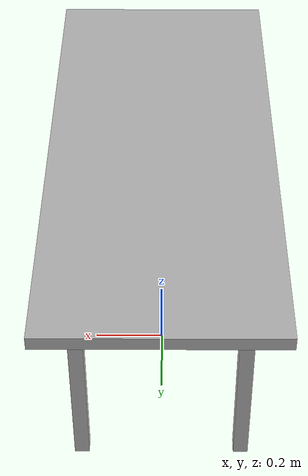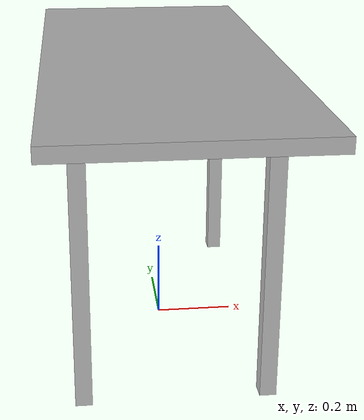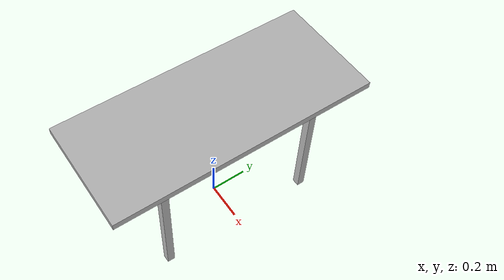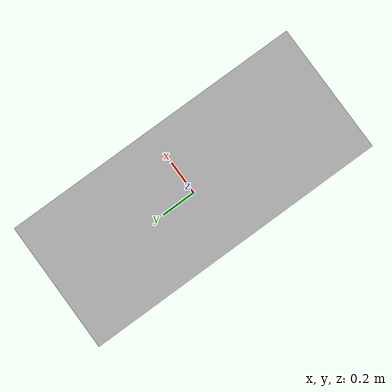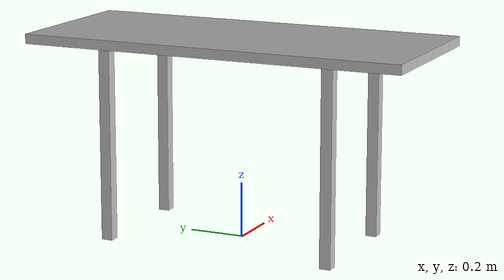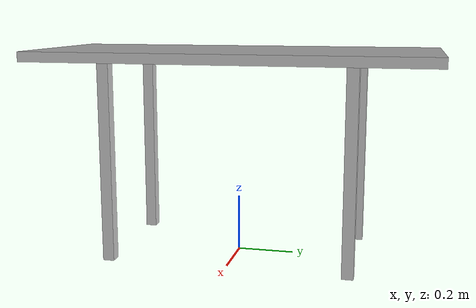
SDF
<?xml version="1.0"?>
<sdf version="1.6">
  <model name="rwc2018/diningtable">
    <link name="1_link">
      <collision name="1_col">
        <geometry>
          <box>
            <size>0.6 1.4 0.035</size>
          </box>
        </geometry>
      </collision>
      <visual name="1_vis">
        <geometry>
          <box>
            <size>0.6 1.4 0.035</size>
          </box>
        </geometry>
      </visual>
      <pose>0 0 0.7175 0 0 0</pose>
    </link>
    <link name="2_link">
      <collision name="2_col">
        <geometry>
          <box>
            <size>0.04 0.04 0.7</size>
          </box>
        </geometry>
      </collision>
      <visual name="2_vis">
        <geometry>
          <box>
            <size>0.04 0.04 0.7</size>
          </box>
        </geometry>
      </visual>
      <pose>-0.22 -0.42 0.35 0 0 0</pose>
    </link>
    <link name="3_link">
      <collision name="3_col">
        <geometry>
          <box>
            <size>0.04 0.04 0.7</size>
          </box>
        </geometry>
      </collision>
      <visual name="3_vis">
        <geometry>
          <box>
            <size>0.04 0.04 0.7</size>
          </box>
        </geometry>
      </visual>
      <pose>-0.22 0.42 0.35 0 0 0</pose>
    </link>
    <link name="4_link">
      <collision name="4_col">
        <geometry>
          <box>
            <size>0.04 0.04 0.7</size>
          </box>
        </geometry>
      </collision>
      <visual name="4_vis">
        <geometry>
          <box>
            <size>0.04 0.04 0.7</size>
          </box>
        </geometry>
      </visual>
      <pose>0.22 -0.42 0.35 0 0 0</pose>
    </link>
    <link name="5_link">
      <collision name="5_col">
        <geometry>
          <box>
            <size>0.04 0.04 0.7</size>
          </box>
        </geometry>
      </collision>
      <visual name="5_vis">
        <geometry>
          <box>
            <size>0.04 0.04 0.7</size>
          </box>
        </geometry>
      </visual>
      <pose>0.22 0.42 0.35 0 0 0</pose>
    </link>
    <link name="on_top_of">
      <virtual_volume name="on_top_of_vv">
        <geometry>
          <box>
            <size>0.58 0.96 0.25</size>
          </box>
        </geometry>
        <pose>0.0 0.0 0.88 0 0 0</pose>
      </virtual_volume>
    </link>
    <link name="in_front_of">
      <virtual_volume name="in_front_of_vv">
        <geometry>
          <box>
            <size>0.2 0.1 0.01</size>
          </box>
        </geometry>
        <pose>0.95 0.0 0.005 0 0 0</pose>
      </virtual_volume>
    </link>
    <link name="on_right_of">
      <virtual_volume name="on_right_of_vv">
        <geometry>
          <box>
            <size>0.54 0.4 0.01</size>
          </box>
        </geometry>
        <pose>0.0 1.2 0.005 0 0 0</pose>
      </virtual_volume>
    </link>
    <link name="in_back_of">
      <virtual_volume name="in_back_of_vv">
        <geometry>
          <box>
            <size>0.2 0.1 0.01</size>
          </box>
        </geometry>
        <pose>-0.95 0.0 0.005 0 0 0</pose>
      </virtual_volume>
    </link>
    <static>true</static>
  </model>
</sdf>
